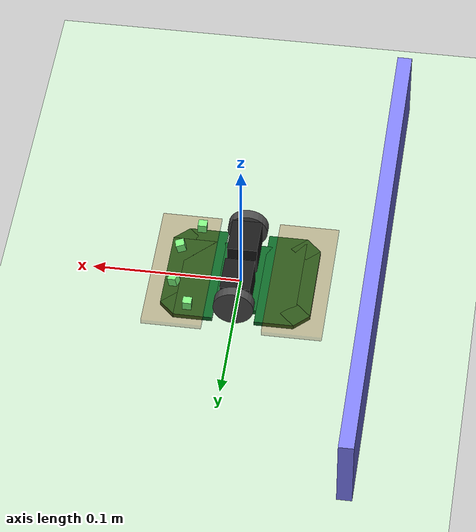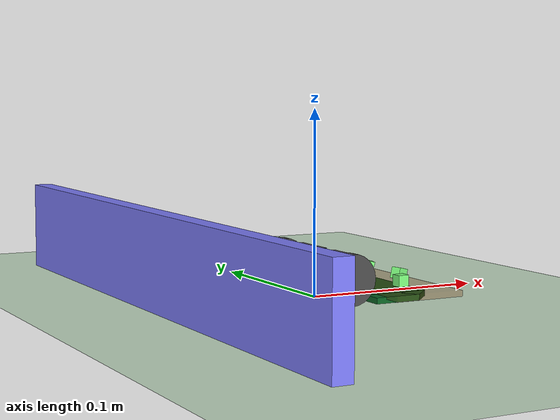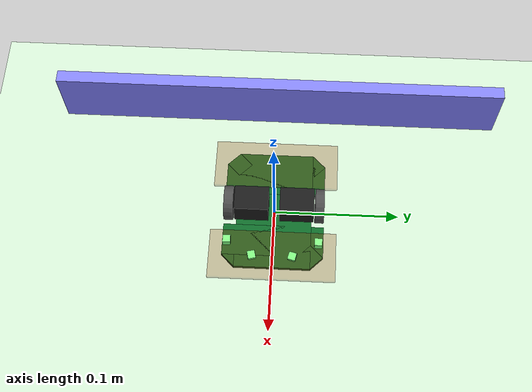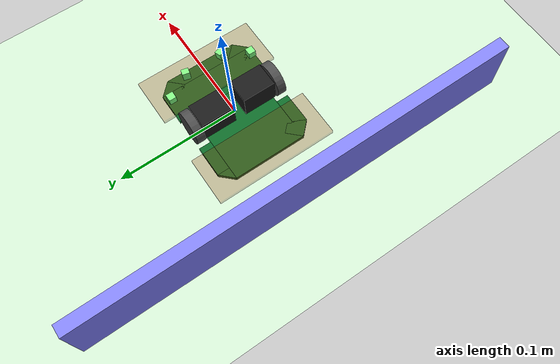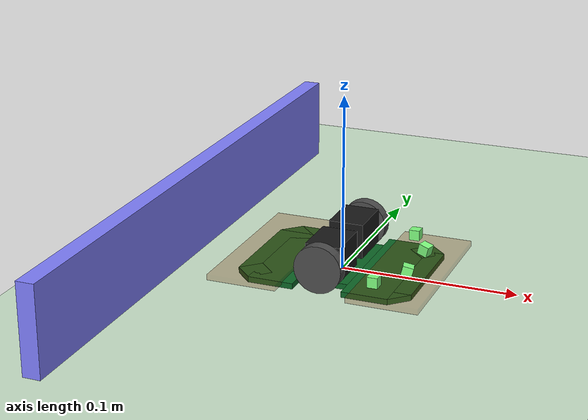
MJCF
<mujoco>
    <default>
    </default>

    <compiler angle="degree" coordinate="local" inertiafromgeom="true" />
    <option integrator="RK4" timestep="0.0001" />
    <asset>
        <texture builtin="gradient" height="100" rgb1="1 1 1" rgb2="0 0 0" type="skybox" width="100" />
        <texture builtin="flat" height="1278" mark="cross" markrgb="1 1 1" name="texgeom"
            random="0.01" rgb1="0.8 0.6 0.4" rgb2="0.8 0.6 0.4" type="cube" width="127" />
        <texture builtin="checker" height="100" name="texplane" rgb1="0 0 0" rgb2="0.8 0.8 0.8"
            type="2d" width="100"/>
        <material name="MatPlane" reflectance="0.5" shininess="1" specular="1" texrepeat="60 60"
            texture="texplane"/>
        <material name="geom" texture="texgeom" texuniform="true" />
    </asset>

    <worldbody>

        <geom conaffinity="1" condim="3" name="floor" friction="0.0 0.0 0.0" pos="0 0 0" rgba="0.8 0.9 0.8 1" size="10 10 10" type="plane"/>

        <body pos="0 0 1.8e-3">
            <freejoint />
            <body name="torso" >
            <geom name="mein_body1" type="box" size="0.05 0.03 0.0016" friction="0.0 0.0 0.0" rgba="0.05 0.4 0.15 1" pos="0 0 0.001" />
            <geom name="mein_body_chip1" type="box" size="0.00707 0.00707 0.0016" friction="0.0 0.0 0.0" rgba="0.05 0.4 0.15 1" pos="0.04 0.03 0.001" euler="0 0 45" />
            <geom name="mein_body_chip2" type="box" size="0.00707 0.00707 0.0016" friction="0.0 0.0 0.0" rgba="0.05 0.4 0.15 1" pos="0.04 -0.03 0.001" euler="0 0 45" />
            <geom name="mein_body_chip3" type="box" size="0.00707 0.00707 0.0016" friction="0.0 0.0 0.0" rgba="0.05 0.4 0.15 1" pos="-0.04 0.03 0.001" euler="0 0 45" />
            <geom name="mein_body_chip4" type="box" size="0.00707 0.00707 0.0016" friction="0.0 0.0 0.0" rgba="0.05 0.4 0.15 1" pos="-0.04 -0.03 0.001" euler="0 0 45" />
            <geom name="mein_body4" type="box" size="0.013 0.04 0.0016" friction="0.0 0.0 0.0" rgba="0.05 0.4 0.15 1" pos="-0.027 0 0.001"/>
            <geom name="mein_body5" type="box" size="0.013 0.04 0.0016" friction="0.0 0.0 0.0" rgba="0.05 0.4 0.15 1" pos="0.027 0 0.001"/>
                <site name = "hit_box" type = "box" size = "0.02 0.05 0.0016" pos="0.04 0 0.003" rgba=".5 .2 0 .3"/>
                <site name = "hit_box2" type = "box" size = "0.02 0.05 0.0016" pos="-0.04 0 0.003" rgba=".5 .2 0 .3"/>
            </body>

            <site name="sensor_left_front" type="box" size="0.003 0.003 0.003" pos="0.031 0.036 0.01" zaxis="1 0 0.01" rgba=".5 1 .5 1"/>
              <!-- zaxisの３つめ　0.1でちょい上向き -->
            <site name="sensor_left_side" type="box" size="0.003 0.003 0.003" pos="0.043 0.016 0.01" zaxis="0.25 1 0" rgba=".5 1 .5 1"/>
            <site name="sensor_right_front" type="box" size="0.003 0.003 0.003" pos="0.031 -0.036 0.01" zaxis="1 0 0.01" rgba=".5 1 .5 1"/>
            <site name="sensor_right_side" type="box" size="0.003 0.003 0.003" pos="0.043 -0.016 0.01" zaxis="0.25 -1 0" rgba=".5 1 .5 1"/>

             <body name="left wheel" pos="-0.0 0.036 0.0125" zaxis="0 1 0">
                <joint name="left wheel joint" type="hinge" axis="0 0 1" limited="false" damping='3.6e-6' />

                <geom type="cylinder" size="0.0135 0.0035" rgba=".3 .3 0.3 1" mass="0.512"/>
                <site type="box" rgba="1 1 1 1" size=".0006 .0036 .0012" />
            </body>

            <body name="right wheel" pos="-0.0 -0.036 0.0125" zaxis="0 1 0">
                <joint name="right wheel joint" type="hinge" axis="0 0 1" limited="false" damping='3.6e-6' />
                <geom type="cylinder" size="0.0135 0.0035" rgba=".3 .3 0.3 1" mass="0.512"/>
                <site type="box" rgba="1 1 1 1" size=".0006 .0036 .0012" />
            </body>

            <body name="motorbox1" pos="0 -0.018 0.0135" >
                <geom type="box" size="0.01 0.0135 0.01" rgba="0.1 0.1 0.1 1" />
            </body>

            <body name="motorbox2" pos="0 0.018 0.0135">
                <geom type="box" size="0.01 0.0135 0.01" rgba="0.1 0.1 0.1 1" />
            </body>

        </body>

        <body name="maze_wall2ss" pos="-0.09 0 0.025">
                <geom type="box" size="0.005 0.18 0.025" rgba=".5 .5 1 1" />
            </body>

<!-- かべかべかべｎ --><!-- かべかべかべｎ --><!-- かべかべかべｎ --><!-- かべかべかべｎ --><!-- かべかべかべｎ -->

<!-- かべかべかべｎ --><!-- かべかべかべｎ --><!-- かべかべかべｎ --><!-- かべかべかべｎ --><!-- かべかべかべｎ -->

    </worldbody>
    <actuator>
        <motor name="right" joint="right wheel joint" gear="1.8e-3"/>
        <motor name="left" joint="left wheel joint" gear="1.8e-3"/>
    </actuator>

    <sensor>
        <rangefinder name="LF" site="sensor_left_front" cutoff="0.10"/>
        <rangefinder name="LS" site="sensor_left_side" cutoff="0.10"/>
        <rangefinder name="RF" site="sensor_right_front" cutoff="0.10"/>
        <rangefinder name="RS" site="sensor_right_side" cutoff="0.10"/>
        <touch name = "HB" site = "hit_box"/>
        <touch name = "HB2" site = "hit_box2"/>
    </sensor>
</mujoco>
